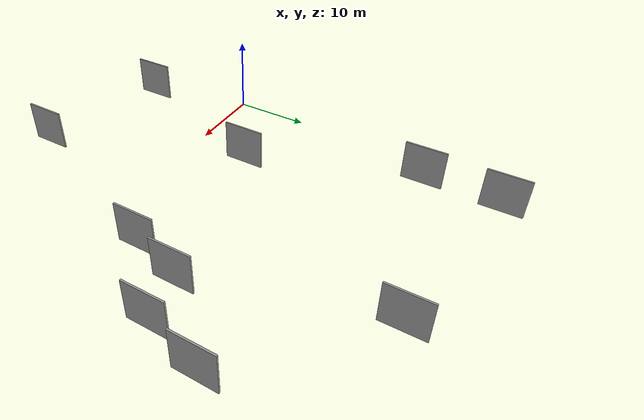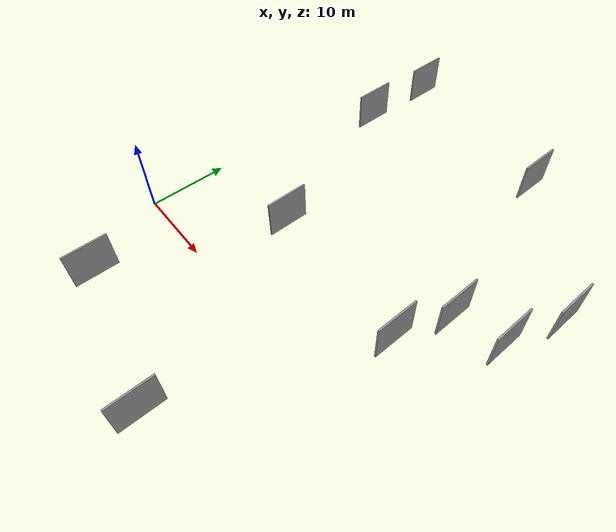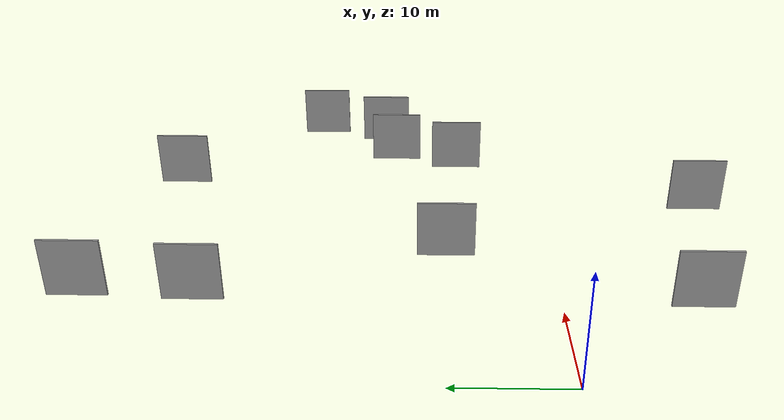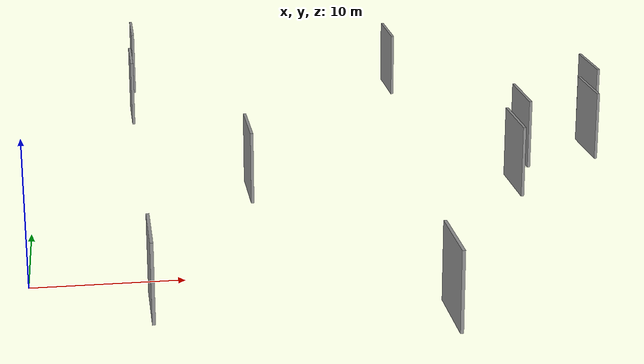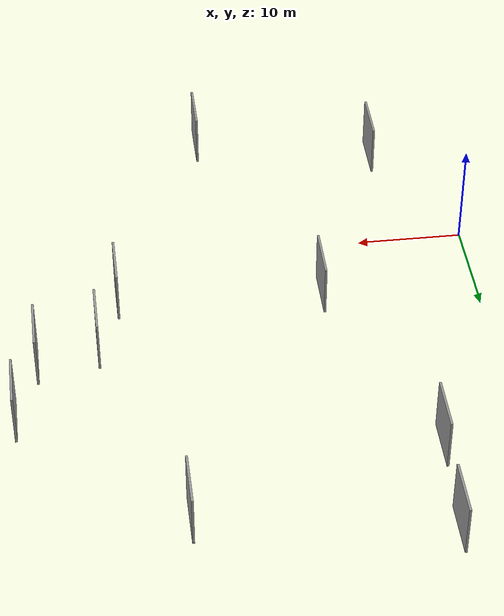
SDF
<sdf version="1.6">
 <world name="default">
  <scene>
   <sky><clouds><speed>12</speed></clouds></sky>
   <ambient>0.4 0.4 0.4 1</ambient>
   <background>0.7 0.7 0.7 1</background>
   <shadows>1</shadows>
  </scene>
  <gravity>0 0 -9.8066</gravity>
  <magnetic_field>6e-06 2.3e-05 -4.2e-05</magnetic_field>
  <physics default="0" name="default_physics" type="ode">
   <ode>
    <solver>
     <type>quick</type>
     <iters>10</iters>
     <sor>1.0</sor>
     <use_dynamic_moi_rescaling>0</use_dynamic_moi_rescaling>
    </solver>
    <constraints>
     <cfm>0</cfm>
     <erp>0.2</erp>
     <contact_max_correcting_vel>100</contact_max_correcting_vel>
     <contact_surface_layer>0.001</contact_surface_layer>
    </constraints>
   </ode>
   <max_step_size>0.004</max_step_size>
   <real_time_factor>1</real_time_factor>
   <real_time_update_rate>250</real_time_update_rate>
  </physics>
  <light name="sun" type="directional">
   <pose>0 0 10 0 0 0</pose>
   <diffuse>0.8 0.8 0.8 1</diffuse>
   <specular>0.2 0.2 0.2 1</specular>
   <attenuation>
    <range>1000</range>
    <constant>0.9</constant>
    <linear>0.01</linear>
    <quadratic>0.001</quadratic>
   </attenuation>
   <direction>-0.5 0.1 -0.9</direction>
  </light>
  <model name="grey_wall_1">
   <static>1</static>
   <pose>15.1739 9.7866 2.5 0.000000 0.000000 1.570796</pose>
   <link name="link">
    <pose>0 0 2.50 0 0 0</pose>
    <collision name="collision"><geometry><box><size>5.00 0.2 5.00</size></box></geometry></collision>
    <visual name="visual">
     <cast_shadows>0</cast_shadows>
     <geometry><box><size>5.00 0.2 5.00</size></box></geometry>
     <material>
      <script>
       <uri>model://grey_wall/materials/scripts</uri>
       <uri>model://grey_wall/materials/textures</uri>
       <name>vrc/grey_wall</name>
      </script>
     </material>
    </visual>
   </link>
  </model>
  <model name="grey_wall_2">
   <static>1</static>
   <pose>7.4411 -10.4106 2.5 0.000000 0.000000 1.570796</pose>
   <link name="link">
    <pose>0 0 2.50 0 0 0</pose>
    <collision name="collision"><geometry><box><size>5.00 0.2 5.00</size></box></geometry></collision>
    <visual name="visual">
     <cast_shadows>0</cast_shadows>
     <geometry><box><size>5.00 0.2 5.00</size></box></geometry>
     <material>
      <script>
       <uri>model://grey_wall/materials/scripts</uri>
       <uri>model://grey_wall/materials/textures</uri>
       <name>vrc/grey_wall</name>
      </script>
     </material>
    </visual>
   </link>
  </model>
  <model name="grey_wall_3">
   <static>1</static>
   <pose>24.5492 -14.1081 2.5 0.000000 0.000000 1.570796</pose>
   <link name="link">
    <pose>0 0 2.50 0 0 0</pose>
    <collision name="collision"><geometry><box><size>5.00 0.2 5.00</size></box></geometry></collision>
    <visual name="visual">
     <cast_shadows>0</cast_shadows>
     <geometry><box><size>5.00 0.2 5.00</size></box></geometry>
     <material>
      <script>
       <uri>model://grey_wall/materials/scripts</uri>
       <uri>model://grey_wall/materials/textures</uri>
       <name>vrc/grey_wall</name>
      </script>
     </material>
    </visual>
   </link>
  </model>
  <model name="grey_wall_4">
   <static>1</static>
   <pose>41.5060 16.1593 2.5 0.000000 0.000000 1.570796</pose>
   <link name="link">
    <pose>0 0 2.50 0 0 0</pose>
    <collision name="collision"><geometry><box><size>5.00 0.2 5.00</size></box></geometry></collision>
    <visual name="visual">
     <cast_shadows>0</cast_shadows>
     <geometry><box><size>5.00 0.2 5.00</size></box></geometry>
     <material>
      <script>
       <uri>model://grey_wall/materials/scripts</uri>
       <uri>model://grey_wall/materials/textures</uri>
       <name>vrc/grey_wall</name>
      </script>
     </material>
    </visual>
   </link>
  </model>
  <model name="grey_wall_5">
   <static>1</static>
   <pose>8.1837 39.6039 2.5 0.000000 0.000000 1.570796</pose>
   <link name="link">
    <pose>0 0 2.50 0 0 0</pose>
    <collision name="collision"><geometry><box><size>5.00 0.2 5.00</size></box></geometry></collision>
    <visual name="visual">
     <cast_shadows>0</cast_shadows>
     <geometry><box><size>5.00 0.2 5.00</size></box></geometry>
     <material>
      <script>
       <uri>model://grey_wall/materials/scripts</uri>
       <uri>model://grey_wall/materials/textures</uri>
       <name>vrc/grey_wall</name>
      </script>
     </material>
    </visual>
   </link>
  </model>
  <model name="grey_wall_6">
   <static>1</static>
   <pose>43.5886 22.9906 2.5 0.000000 0.000000 1.570796</pose>
   <link name="link">
    <pose>0 0 2.50 0 0 0</pose>
    <collision name="collision"><geometry><box><size>5.00 0.2 5.00</size></box></geometry></collision>
    <visual name="visual">
     <cast_shadows>0</cast_shadows>
     <geometry><box><size>5.00 0.2 5.00</size></box></geometry>
     <material>
      <script>
       <uri>model://grey_wall/materials/scripts</uri>
       <uri>model://grey_wall/materials/textures</uri>
       <name>vrc/grey_wall</name>
      </script>
     </material>
    </visual>
   </link>
  </model>
  <model name="grey_wall_7">
   <static>1</static>
   <pose>29.7363 36.0569 2.5 0.000000 0.000000 1.570796</pose>
   <link name="link">
    <pose>0 0 2.50 0 0 0</pose>
    <collision name="collision"><geometry><box><size>5.00 0.2 5.00</size></box></geometry></collision>
    <visual name="visual">
     <cast_shadows>0</cast_shadows>
     <geometry><box><size>5.00 0.2 5.00</size></box></geometry>
     <material>
      <script>
       <uri>model://grey_wall/materials/scripts</uri>
       <uri>model://grey_wall/materials/textures</uri>
       <name>vrc/grey_wall</name>
      </script>
     </material>
    </visual>
   </link>
  </model>
  <model name="grey_wall_8">
   <static>1</static>
   <pose>7.7768 30.1533 2.5 0.000000 0.000000 1.570796</pose>
   <link name="link">
    <pose>0 0 2.50 0 0 0</pose>
    <collision name="collision"><geometry><box><size>5.00 0.2 5.00</size></box></geometry></collision>
    <visual name="visual">
     <cast_shadows>0</cast_shadows>
     <geometry><box><size>5.00 0.2 5.00</size></box></geometry>
     <material>
      <script>
       <uri>model://grey_wall/materials/scripts</uri>
       <uri>model://grey_wall/materials/textures</uri>
       <name>vrc/grey_wall</name>
      </script>
     </material>
    </visual>
   </link>
  </model>
  <model name="grey_wall_9">
   <static>1</static>
   <pose>36.0268 14.8059 2.5 0.000000 0.000000 1.570796</pose>
   <link name="link">
    <pose>0 0 2.50 0 0 0</pose>
    <collision name="collision"><geometry><box><size>5.00 0.2 5.00</size></box></geometry></collision>
    <visual name="visual">
     <cast_shadows>0</cast_shadows>
     <geometry><box><size>5.00 0.2 5.00</size></box></geometry>
     <material>
      <script>
       <uri>model://grey_wall/materials/scripts</uri>
       <uri>model://grey_wall/materials/textures</uri>
       <name>vrc/grey_wall</name>
      </script>
     </material>
    </visual>
   </link>
  </model>
  <model name="grey_wall_10">
   <static>1</static>
   <pose>33.9277 8.4988 2.5 0.000000 0.000000 1.570796</pose>
   <link name="link">
    <pose>0 0 2.50 0 0 0</pose>
    <collision name="collision"><geometry><box><size>5.00 0.2 5.00</size></box></geometry></collision>
    <visual name="visual">
     <cast_shadows>0</cast_shadows>
     <geometry><box><size>5.00 0.2 5.00</size></box></geometry>
     <material>
      <script>
       <uri>model://grey_wall/materials/scripts</uri>
       <uri>model://grey_wall/materials/textures</uri>
       <name>vrc/grey_wall</name>
      </script>
     </material>
    </visual>
   </link>
  </model>
 </world>
</sdf>
